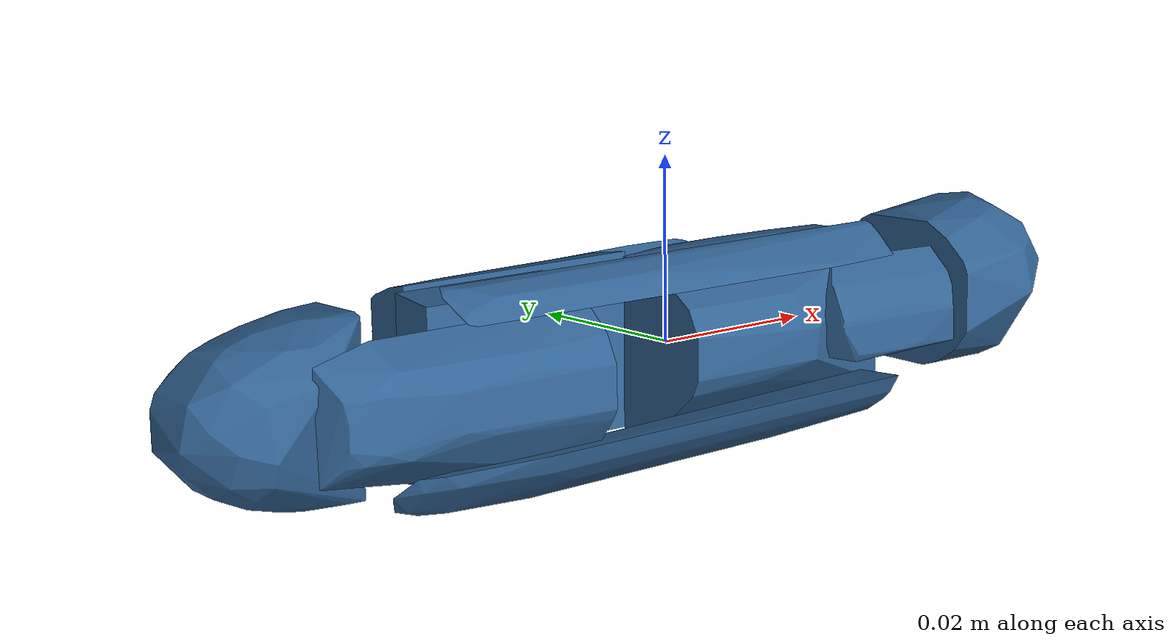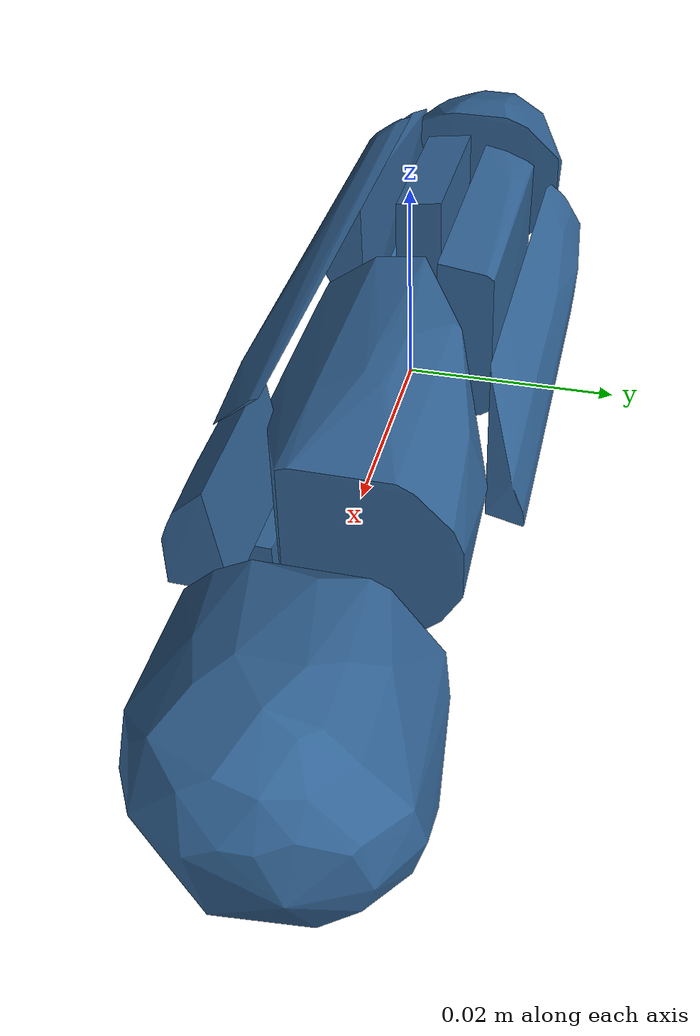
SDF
<?xml version='1.0' encoding='UTF-8'?>
<!-- This SDF was autogenerated by obj_to_drake_sdf.py -->
<sdf version="1.7">
  <model name="stick">
    <link name="stick">
      <inertial>
        <pose>0 0 0 0 0 0</pose>
        <mass>0.05</mass>
        <inertia>
          <ixx>5.2253555e-06</ixx>
          <iyy>6.0754624e-05</iyy>
          <izz>6.1515034e-05</izz>
          <ixy>-1.3188445e-06</ixy>
          <ixz>-1.840152e-07</ixz>
          <iyz>-7.0865857e-08</iyz>
        </inertia>
      </inertial>
      <visual name="convex_0">
        <pose>0 0 0 0 0 0</pose>
        <geometry>
          <mesh>
            <uri>stick_convex_0.obj</uri>
          </mesh>
        </geometry>
        <material>
          <diffuse>0.19607843137254902 0.39215686274509803 0.5882352941176471 1</diffuse>
        </material>
      </visual>
      <collision name="convex_0_volume">
        <pose>0 0 0 0 0 0</pose>
        <geometry>
          <mesh>
            <uri>stick_convex_0.obj</uri>
          </mesh>
        </geometry>
        <drake:proximity_properties xmlns:drake="uri:drake">
          <drake:compliant_hydroelastic/>
          <drake:hydroelastic_modulus> 3.0e7 </drake:hydroelastic_modulus>
          <drake:mesh_resolution_hint> 0.02 </drake:mesh_resolution_hint>
          <drake:hunt_crossley_dissipation>10</drake:hunt_crossley_dissipation>
          <drake:mu_dynamic>0.3</drake:mu_dynamic>
        </drake:proximity_properties>
      </collision>
      <visual name="convex_1">
        <pose>0 0 0 0 0 0</pose>
        <geometry>
          <mesh>
            <uri>stick_convex_1.obj</uri>
          </mesh>
        </geometry>
        <material>
          <diffuse>0.19607843137254902 0.39215686274509803 0.5882352941176471 1</diffuse>
        </material>
      </visual>
      <collision name="convex_1_volume">
        <pose>0 0 0 0 0 0</pose>
        <geometry>
          <mesh>
            <uri>stick_convex_1.obj</uri>
          </mesh>
        </geometry>
        <drake:proximity_properties xmlns:drake="uri:drake">
          <drake:compliant_hydroelastic/>
          <drake:hydroelastic_modulus> 3.0e7 </drake:hydroelastic_modulus>
          <drake:mesh_resolution_hint> 0.02 </drake:mesh_resolution_hint>
          <drake:hunt_crossley_dissipation>10</drake:hunt_crossley_dissipation>
          <drake:mu_dynamic>0.3</drake:mu_dynamic>
        </drake:proximity_properties>
      </collision>
      <visual name="convex_2">
        <pose>0 0 0 0 0 0</pose>
        <geometry>
          <mesh>
            <uri>stick_convex_2.obj</uri>
          </mesh>
        </geometry>
        <material>
          <diffuse>0.19607843137254902 0.39215686274509803 0.5882352941176471 1</diffuse>
        </material>
      </visual>
      <collision name="convex_2_volume">
        <pose>0 0 0 0 0 0</pose>
        <geometry>
          <mesh>
            <uri>stick_convex_2.obj</uri>
          </mesh>
        </geometry>
        <drake:proximity_properties xmlns:drake="uri:drake">
          <drake:compliant_hydroelastic/>
          <drake:hydroelastic_modulus> 3.0e7 </drake:hydroelastic_modulus>
          <drake:mesh_resolution_hint> 0.02 </drake:mesh_resolution_hint>
          <drake:hunt_crossley_dissipation>10</drake:hunt_crossley_dissipation>
          <drake:mu_dynamic>0.3</drake:mu_dynamic>
        </drake:proximity_properties>
      </collision>
      <visual name="convex_3">
        <pose>0 0 0 0 0 0</pose>
        <geometry>
          <mesh>
            <uri>stick_convex_3.obj</uri>
          </mesh>
        </geometry>
        <material>
          <diffuse>0.19607843137254902 0.39215686274509803 0.5882352941176471 1</diffuse>
        </material>
      </visual>
      <collision name="convex_3_volume">
        <pose>0 0 0 0 0 0</pose>
        <geometry>
          <mesh>
            <uri>stick_convex_3.obj</uri>
          </mesh>
        </geometry>
        <drake:proximity_properties xmlns:drake="uri:drake">
          <drake:compliant_hydroelastic/>
          <drake:hydroelastic_modulus> 3.0e7 </drake:hydroelastic_modulus>
          <drake:mesh_resolution_hint> 0.02 </drake:mesh_resolution_hint>
          <drake:hunt_crossley_dissipation>10</drake:hunt_crossley_dissipation>
          <drake:mu_dynamic>0.3</drake:mu_dynamic>
        </drake:proximity_properties>
      </collision>
      <visual name="convex_4">
        <pose>0 0 0 0 0 0</pose>
        <geometry>
          <mesh>
            <uri>stick_convex_4.obj</uri>
          </mesh>
        </geometry>
        <material>
          <diffuse>0.19607843137254902 0.39215686274509803 0.5882352941176471 1</diffuse>
        </material>
      </visual>
      <collision name="convex_4_volume">
        <pose>0 0 0 0 0 0</pose>
        <geometry>
          <mesh>
            <uri>stick_convex_4.obj</uri>
          </mesh>
        </geometry>
        <drake:proximity_properties xmlns:drake="uri:drake">
          <drake:compliant_hydroelastic/>
          <drake:hydroelastic_modulus> 3.0e7 </drake:hydroelastic_modulus>
          <drake:mesh_resolution_hint> 0.02 </drake:mesh_resolution_hint>
          <drake:hunt_crossley_dissipation>10</drake:hunt_crossley_dissipation>
          <drake:mu_dynamic>0.3</drake:mu_dynamic>
        </drake:proximity_properties>
      </collision>
      <visual name="convex_5">
        <pose>0 0 0 0 0 0</pose>
        <geometry>
          <mesh>
            <uri>stick_convex_5.obj</uri>
          </mesh>
        </geometry>
        <material>
          <diffuse>0.19607843137254902 0.39215686274509803 0.5882352941176471 1</diffuse>
        </material>
      </visual>
      <collision name="convex_5_volume">
        <pose>0 0 0 0 0 0</pose>
        <geometry>
          <mesh>
            <uri>stick_convex_5.obj</uri>
          </mesh>
        </geometry>
        <drake:proximity_properties xmlns:drake="uri:drake">
          <drake:compliant_hydroelastic/>
          <drake:hydroelastic_modulus> 3.0e7 </drake:hydroelastic_modulus>
          <drake:mesh_resolution_hint> 0.02 </drake:mesh_resolution_hint>
          <drake:hunt_crossley_dissipation>10</drake:hunt_crossley_dissipation>
          <drake:mu_dynamic>0.3</drake:mu_dynamic>
        </drake:proximity_properties>
      </collision>
      <visual name="convex_6">
        <pose>0 0 0 0 0 0</pose>
        <geometry>
          <mesh>
            <uri>stick_convex_6.obj</uri>
          </mesh>
        </geometry>
        <material>
          <diffuse>0.19607843137254902 0.39215686274509803 0.5882352941176471 1</diffuse>
        </material>
      </visual>
      <collision name="convex_6_volume">
        <pose>0 0 0 0 0 0</pose>
        <geometry>
          <mesh>
            <uri>stick_convex_6.obj</uri>
          </mesh>
        </geometry>
        <drake:proximity_properties xmlns:drake="uri:drake">
          <drake:compliant_hydroelastic/>
          <drake:hydroelastic_modulus> 3.0e7 </drake:hydroelastic_modulus>
          <drake:mesh_resolution_hint> 0.02 </drake:mesh_resolution_hint>
          <drake:hunt_crossley_dissipation>10</drake:hunt_crossley_dissipation>
          <drake:mu_dynamic>0.3</drake:mu_dynamic>
        </drake:proximity_properties>
      </collision>
      <visual name="convex_7">
        <pose>0 0 0 0 0 0</pose>
        <geometry>
          <mesh>
            <uri>stick_convex_7.obj</uri>
          </mesh>
        </geometry>
        <material>
          <diffuse>0.19607843137254902 0.39215686274509803 0.5882352941176471 1</diffuse>
        </material>
      </visual>
      <collision name="convex_7_volume">
        <pose>0 0 0 0 0 0</pose>
        <geometry>
          <mesh>
            <uri>stick_convex_7.obj</uri>
          </mesh>
        </geometry>
        <drake:proximity_properties xmlns:drake="uri:drake">
          <drake:compliant_hydroelastic/>
          <drake:hydroelastic_modulus> 3.0e7 </drake:hydroelastic_modulus>
          <drake:mesh_resolution_hint> 0.02 </drake:mesh_resolution_hint>
          <drake:hunt_crossley_dissipation>10</drake:hunt_crossley_dissipation>
          <drake:mu_dynamic>0.3</drake:mu_dynamic>
        </drake:proximity_properties>
      </collision>
      <visual name="convex_8">
        <pose>0 0 0 0 0 0</pose>
        <geometry>
          <mesh>
            <uri>stick_convex_8.obj</uri>
          </mesh>
        </geometry>
        <material>
          <diffuse>0.19607843137254902 0.39215686274509803 0.5882352941176471 1</diffuse>
        </material>
      </visual>
      <collision name="convex_8_volume">
        <pose>0 0 0 0 0 0</pose>
        <geometry>
          <mesh>
            <uri>stick_convex_8.obj</uri>
          </mesh>
        </geometry>
        <drake:proximity_properties xmlns:drake="uri:drake">
          <drake:compliant_hydroelastic/>
          <drake:hydroelastic_modulus> 3.0e7 </drake:hydroelastic_modulus>
          <drake:mesh_resolution_hint> 0.02 </drake:mesh_resolution_hint>
          <drake:hunt_crossley_dissipation>10</drake:hunt_crossley_dissipation>
          <drake:mu_dynamic>0.3</drake:mu_dynamic>
        </drake:proximity_properties>
      </collision>
      <visual name="convex_9">
        <pose>0 0 0 0 0 0</pose>
        <geometry>
          <mesh>
            <uri>stick_convex_9.obj</uri>
          </mesh>
        </geometry>
        <material>
          <diffuse>0.19607843137254902 0.39215686274509803 0.5882352941176471 1</diffuse>
        </material>
      </visual>
      <collision name="convex_9_volume">
        <pose>0 0 0 0 0 0</pose>
        <geometry>
          <mesh>
            <uri>stick_convex_9.obj</uri>
          </mesh>
        </geometry>
        <drake:proximity_properties xmlns:drake="uri:drake">
          <drake:compliant_hydroelastic/>
          <drake:hydroelastic_modulus> 3.0e7 </drake:hydroelastic_modulus>
          <drake:mesh_resolution_hint> 0.02 </drake:mesh_resolution_hint>
          <drake:hunt_crossley_dissipation>10</drake:hunt_crossley_dissipation>
          <drake:mu_dynamic>0.3</drake:mu_dynamic>
        </drake:proximity_properties>
      </collision>
    </link>
  </model>
</sdf>
